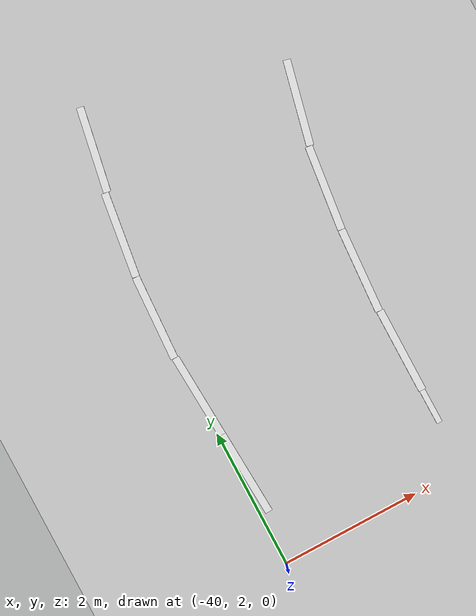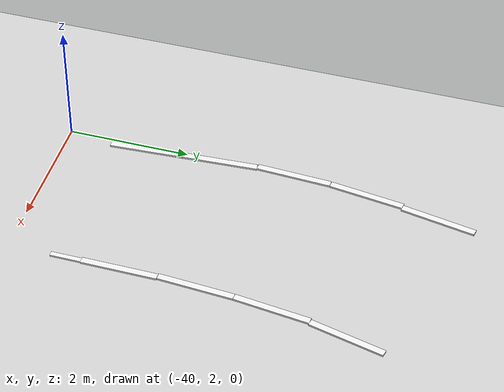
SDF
<sdf version="1.7">
 <world name="default">
  <model name="ground_plane">
   <static>1</static>
   <link name="link">
    <collision name="collision">
     <geometry><plane><normal>0 0 1</normal><size>100 100</size></plane></geometry>
     <surface><friction><ode><mu>100</mu><mu2>50</mu2></ode></friction></surface>
    </collision>
    <visual name="visual">
     <cast_shadows>0</cast_shadows>
     <geometry><plane><normal>0 0 1</normal><size>100 100</size></plane></geometry>
     <material>
      <script><uri>file://media/materials/scripts/gazebo.material</uri><name>Gazebo/Grey</name></script>
     </material>
    </visual>
   </link>
  </model>
  <model name="road_way_clone_clone_clone_0_clone_clone_clone_clone_0_clone_0_clone_0_clone_clone_clone_clone_clone_clone_clone_10_clone_2_clone_0_clone_1_clone_0_clone_0_clone_clone_0_clone_1_clone_clone_clone_clone_clone_0_clone_clone_clone_clone_clone_0">
   <link name="link">
    <inertial>
     <mass>1</mass>
     <inertia>
      <ixx>0.166667</ixx>
      <ixy>0</ixy>
      <ixz>0</ixz>
      <iyy>0.166667</iyy>
      <iyz>0</iyz>
      <izz>0.166667</izz>
     </inertia>
    </inertial>
    <visual name="visual">
     <geometry><box><size>0.106644 1.22348 0.03129</size></box></geometry>
     <material>
      <script><name>Gazebo/White</name><uri>file://media/materials/scripts/gazebo.material</uri></script>
      <shader type="pixel"><normal_map>__default__</normal_map></shader>
      <ambient>1 1 1 1</ambient>
      <diffuse>1 1 1 1</diffuse>
      <specular>0 0 0 1</specular>
      <emissive>0 0 0 1</emissive>
     </material>
    </visual>
    <collision name="collision">
     <geometry><box><size>0.10644 1.22348 0.03129</size></box></geometry>
     <surface>
      <friction>
       <ode><mu>1</mu><mu2>1</mu2><fdir1>0 0 0</fdir1><slip1>0</slip1><slip2>0</slip2></ode>
       <torsional>
        <coefficient>1</coefficient>
        <patch_radius>0</patch_radius>
        <surface_radius>0</surface_radius>
        <use_patch_radius>1</use_patch_radius>
        <ode><slip>0</slip></ode>
       </torsional>
      </friction>
      <bounce><restitution_coefficient>0</restitution_coefficient><threshold>1e+06</threshold></bounce>
      <contact>
       <collide_without_contact>0</collide_without_contact>
       <collide_without_contact_bitmask>1</collide_without_contact_bitmask>
       <collide_bitmask>1</collide_bitmask>
       <ode>
        <soft_cfm>0</soft_cfm>
        <soft_erp>0.2</soft_erp>
        <kp>1e+13</kp>
        <kd>1</kd>
        <max_vel>0.01</max_vel>
        <min_depth>0</min_depth>
       </ode>
       <bullet>
        <split_impulse>1</split_impulse>
        <split_impulse_penetration_threshold>-0.01</split_impulse_penetration_threshold>
        <soft_cfm>0</soft_cfm>
        <soft_erp>0.2</soft_erp>
        <kp>1e+13</kp>
        <kd>1</kd>
       </bullet>
      </contact>
     </surface>
    </collision>
   </link>
   <static>0</static>
   <pose>-39.6443 8.21608 0.015638 1.1e-05 -0 2.95875</pose>
  </model>
  <model name="road_way_clone_clone_clone_0_clone_clone_clone_clone_0_clone_0_clone_0_clone_clone_clone_clone_clone_clone_clone_10_clone_2_clone_0_clone_1_clone_0_clone_0_clone_clone_0_clone_1_clone_clone_clone_clone_clone_0_clone_clone_clone_clone_clone_0_clone">
   <link name="link">
    <inertial>
     <mass>1</mass>
     <inertia>
      <ixx>0.166667</ixx>
      <ixy>0</ixy>
      <ixz>0</ixz>
      <iyy>0.166667</iyy>
      <iyz>0</iyz>
      <izz>0.166667</izz>
     </inertia>
    </inertial>
    <visual name="visual">
     <geometry><box><size>0.106644 1.22348 0.03129</size></box></geometry>
     <material>
      <script><name>Gazebo/White</name><uri>file://media/materials/scripts/gazebo.material</uri></script>
      <shader type="pixel"><normal_map>__default__</normal_map></shader>
      <ambient>1 1 1 1</ambient>
      <diffuse>1 1 1 1</diffuse>
      <specular>0 0 0 1</specular>
      <emissive>0 0 0 1</emissive>
     </material>
    </visual>
    <collision name="collision">
     <geometry><box><size>0.10644 1.22348 0.03129</size></box></geometry>
     <surface>
      <friction>
       <ode><mu>1</mu><mu2>1</mu2><fdir1>0 0 0</fdir1><slip1>0</slip1><slip2>0</slip2></ode>
       <torsional>
        <coefficient>1</coefficient>
        <patch_radius>0</patch_radius>
        <surface_radius>0</surface_radius>
        <use_patch_radius>1</use_patch_radius>
        <ode><slip>0</slip></ode>
       </torsional>
      </friction>
      <bounce><restitution_coefficient>0</restitution_coefficient><threshold>1e+06</threshold></bounce>
      <contact>
       <collide_without_contact>0</collide_without_contact>
       <collide_without_contact_bitmask>1</collide_without_contact_bitmask>
       <collide_bitmask>1</collide_bitmask>
       <ode>
        <soft_cfm>0</soft_cfm>
        <soft_erp>0.2</soft_erp>
        <kp>1e+13</kp>
        <kd>1</kd>
        <max_vel>0.01</max_vel>
        <min_depth>0</min_depth>
       </ode>
       <bullet>
        <split_impulse>1</split_impulse>
        <split_impulse_penetration_threshold>-0.01</split_impulse_penetration_threshold>
        <soft_cfm>0</soft_cfm>
        <soft_erp>0.2</soft_erp>
        <kp>1e+13</kp>
        <kd>1</kd>
       </bullet>
      </contact>
     </surface>
    </collision>
   </link>
   <static>0</static>
   <pose>-36.8712 7.4549 0.01564 -8e-06 1e-06 2.91162</pose>
  </model>
  <model name="road_way_clone_clone_clone_0_clone_clone_clone_clone_0_clone_0_clone_0_clone_clone_clone_clone_clone_clone_clone_10_clone_2_clone_0_clone_1_clone_0_clone_0_clone_clone_0_clone_1_clone_clone_clone_clone_clone_0_clone_clone_clone_clone_clone_0_clone_0">
   <link name="link">
    <inertial>
     <mass>1</mass>
     <inertia>
      <ixx>0.166667</ixx>
      <ixy>0</ixy>
      <ixz>0</ixz>
      <iyy>0.166667</iyy>
      <iyz>0</iyz>
      <izz>0.166667</izz>
     </inertia>
    </inertial>
    <visual name="visual">
     <geometry><box><size>0.106644 1.22348 0.03129</size></box></geometry>
     <material>
      <script><name>Gazebo/White</name><uri>file://media/materials/scripts/gazebo.material</uri></script>
      <shader type="pixel"><normal_map>__default__</normal_map></shader>
      <ambient>1 1 1 1</ambient>
      <diffuse>1 1 1 1</diffuse>
      <specular>0 0 0 1</specular>
      <emissive>0 0 0 1</emissive>
     </material>
    </visual>
    <collision name="collision">
     <geometry><box><size>0.10644 1.22348 0.03129</size></box></geometry>
     <surface>
      <friction>
       <ode><mu>1</mu><mu2>1</mu2><fdir1>0 0 0</fdir1><slip1>0</slip1><slip2>0</slip2></ode>
       <torsional>
        <coefficient>1</coefficient>
        <patch_radius>0</patch_radius>
        <surface_radius>0</surface_radius>
        <use_patch_radius>1</use_patch_radius>
        <ode><slip>0</slip></ode>
       </torsional>
      </friction>
      <bounce><restitution_coefficient>0</restitution_coefficient><threshold>1e+06</threshold></bounce>
      <contact>
       <collide_without_contact>0</collide_without_contact>
       <collide_without_contact_bitmask>1</collide_without_contact_bitmask>
       <collide_bitmask>1</collide_bitmask>
       <ode>
        <soft_cfm>0</soft_cfm>
        <soft_erp>0.2</soft_erp>
        <kp>1e+13</kp>
        <kd>1</kd>
        <max_vel>0.01</max_vel>
        <min_depth>0</min_depth>
       </ode>
       <bullet>
        <split_impulse>1</split_impulse>
        <split_impulse_penetration_threshold>-0.01</split_impulse_penetration_threshold>
        <soft_cfm>0</soft_cfm>
        <soft_erp>0.2</soft_erp>
        <kp>1e+13</kp>
        <kd>1</kd>
       </bullet>
      </contact>
     </surface>
    </collision>
   </link>
   <static>0</static>
   <pose>-39.874 7.0117 0.015638 1.1e-05 -0 3.00415</pose>
  </model>
  <model name="road_way_clone_clone_clone_0_clone_clone_clone_clone_0_clone_0_clone_0_clone_clone_clone_clone_clone_clone_clone_10_clone_2_clone_0_clone_1_clone_0_clone_0_clone_clone_0_clone_1_clone_clone_clone_clone_clone_0_clone_clone_clone_clone_clone_0_clone_clone">
   <link name="link">
    <inertial>
     <mass>1</mass>
     <inertia>
      <ixx>0.166667</ixx>
      <ixy>0</ixy>
      <ixz>0</ixz>
      <iyy>0.166667</iyy>
      <iyz>0</iyz>
      <izz>0.166667</izz>
     </inertia>
    </inertial>
    <visual name="visual">
     <geometry><box><size>0.106644 1.22348 0.03129</size></box></geometry>
     <material>
      <script><name>Gazebo/White</name><uri>file://media/materials/scripts/gazebo.material</uri></script>
      <shader type="pixel"><normal_map>__default__</normal_map></shader>
      <ambient>1 1 1 1</ambient>
      <diffuse>1 1 1 1</diffuse>
      <specular>0 0 0 1</specular>
      <emissive>0 0 0 1</emissive>
     </material>
    </visual>
    <collision name="collision">
     <geometry><box><size>0.10644 1.22348 0.03129</size></box></geometry>
     <surface>
      <friction>
       <ode><mu>1</mu><mu2>1</mu2><fdir1>0 0 0</fdir1><slip1>0</slip1><slip2>0</slip2></ode>
       <torsional>
        <coefficient>1</coefficient>
        <patch_radius>0</patch_radius>
        <surface_radius>0</surface_radius>
        <use_patch_radius>1</use_patch_radius>
        <ode><slip>0</slip></ode>
       </torsional>
      </friction>
      <bounce><restitution_coefficient>0</restitution_coefficient><threshold>1e+06</threshold></bounce>
      <contact>
       <collide_without_contact>0</collide_without_contact>
       <collide_without_contact_bitmask>1</collide_without_contact_bitmask>
       <collide_bitmask>1</collide_bitmask>
       <ode>
        <soft_cfm>0</soft_cfm>
        <soft_erp>0.2</soft_erp>
        <kp>1e+13</kp>
        <kd>1</kd>
        <max_vel>0.01</max_vel>
        <min_depth>0</min_depth>
       </ode>
       <bullet>
        <split_impulse>1</split_impulse>
        <split_impulse_penetration_threshold>-0.01</split_impulse_penetration_threshold>
        <soft_cfm>0</soft_cfm>
        <soft_erp>0.2</soft_erp>
        <kp>1e+13</kp>
        <kd>1</kd>
       </bullet>
      </contact>
     </surface>
    </collision>
   </link>
   <static>0</static>
   <pose>-37.1064 6.2512 0.015634 1.8e-05 0 3.02043</pose>
  </model>
  <model name="road_way_clone_clone_clone_0_clone_clone_clone_clone_0_clone_0_clone_0_clone_clone_clone_clone_clone_clone_clone_10_clone_2_clone_0_clone_1_clone_0_clone_0_clone_clone_0_clone_1_clone_clone_clone_clone_clone_0_clone_clone_clone_clone_clone_0_clone_0_clone">
   <link name="link">
    <inertial>
     <mass>1</mass>
     <inertia>
      <ixx>0.166667</ixx>
      <ixy>0</ixy>
      <ixz>0</ixz>
      <iyy>0.166667</iyy>
      <iyz>0</iyz>
      <izz>0.166667</izz>
     </inertia>
    </inertial>
    <visual name="visual">
     <geometry><box><size>0.106644 1.22348 0.03129</size></box></geometry>
     <material>
      <script><name>Gazebo/White</name><uri>file://media/materials/scripts/gazebo.material</uri></script>
      <shader type="pixel"><normal_map>__default__</normal_map></shader>
      <ambient>1 1 1 1</ambient>
      <diffuse>1 1 1 1</diffuse>
      <specular>0 0 0 1</specular>
      <emissive>0 0 0 1</emissive>
     </material>
    </visual>
    <collision name="collision">
     <geometry><box><size>0.10644 1.22348 0.03129</size></box></geometry>
     <surface>
      <friction>
       <ode><mu>1</mu><mu2>1</mu2><fdir1>0 0 0</fdir1><slip1>0</slip1><slip2>0</slip2></ode>
       <torsional>
        <coefficient>1</coefficient>
        <patch_radius>0</patch_radius>
        <surface_radius>0</surface_radius>
        <use_patch_radius>1</use_patch_radius>
        <ode><slip>0</slip></ode>
       </torsional>
      </friction>
      <bounce><restitution_coefficient>0</restitution_coefficient><threshold>1e+06</threshold></bounce>
      <contact>
       <collide_without_contact>0</collide_without_contact>
       <collide_without_contact_bitmask>1</collide_without_contact_bitmask>
       <collide_bitmask>1</collide_bitmask>
       <ode>
        <soft_cfm>0</soft_cfm>
        <soft_erp>0.2</soft_erp>
        <kp>1e+13</kp>
        <kd>1</kd>
        <max_vel>0.01</max_vel>
        <min_depth>0</min_depth>
       </ode>
       <bullet>
        <split_impulse>1</split_impulse>
        <split_impulse_penetration_threshold>-0.01</split_impulse_penetration_threshold>
        <soft_cfm>0</soft_cfm>
        <soft_erp>0.2</soft_erp>
        <kp>1e+13</kp>
        <kd>1</kd>
       </bullet>
      </contact>
     </surface>
    </collision>
   </link>
   <static>0</static>
   <pose>-39.9926 5.79061 0.015638 1.1e-05 -0 3.09175</pose>
  </model>
  <model name="road_way_clone_clone_clone_0_clone_clone_clone_clone_0_clone_0_clone_0_clone_clone_clone_clone_clone_clone_clone_10_clone_2_clone_0_clone_1_clone_0_clone_0_clone_clone_0_clone_1_clone_clone_clone_clone_clone_0_clone_clone_clone_clone_clone_0_clone_0_clone_clone">
   <link name="link">
    <inertial>
     <mass>1</mass>
     <inertia>
      <ixx>0.166667</ixx>
      <ixy>0</ixy>
      <ixz>0</ixz>
      <iyy>0.166667</iyy>
      <iyz>0</iyz>
      <izz>0.166667</izz>
     </inertia>
    </inertial>
    <visual name="visual">
     <geometry><box><size>0.106644 1.22348 0.03129</size></box></geometry>
     <material>
      <script><name>Gazebo/White</name><uri>file://media/materials/scripts/gazebo.material</uri></script>
      <shader type="pixel"><normal_map>__default__</normal_map></shader>
      <ambient>1 1 1 1</ambient>
      <diffuse>1 1 1 1</diffuse>
      <specular>0 0 0 1</specular>
      <emissive>0 0 0 1</emissive>
     </material>
    </visual>
    <collision name="collision">
     <geometry><box><size>0.10644 1.22348 0.03129</size></box></geometry>
     <surface>
      <friction>
       <ode><mu>1</mu><mu2>1</mu2><fdir1>0 0 0</fdir1><slip1>0</slip1><slip2>0</slip2></ode>
       <torsional>
        <coefficient>1</coefficient>
        <patch_radius>0</patch_radius>
        <surface_radius>0</surface_radius>
        <use_patch_radius>1</use_patch_radius>
        <ode><slip>0</slip></ode>
       </torsional>
      </friction>
      <bounce><restitution_coefficient>0</restitution_coefficient><threshold>1e+06</threshold></bounce>
      <contact>
       <collide_without_contact>0</collide_without_contact>
       <collide_without_contact_bitmask>1</collide_without_contact_bitmask>
       <collide_bitmask>1</collide_bitmask>
       <ode>
        <soft_cfm>0</soft_cfm>
        <soft_erp>0.2</soft_erp>
        <kp>1e+13</kp>
        <kd>1</kd>
        <max_vel>0.01</max_vel>
        <min_depth>0</min_depth>
       </ode>
       <bullet>
        <split_impulse>1</split_impulse>
        <split_impulse_penetration_threshold>-0.01</split_impulse_penetration_threshold>
        <soft_cfm>0</soft_cfm>
        <soft_erp>0.2</soft_erp>
        <kp>1e+13</kp>
        <kd>1</kd>
       </bullet>
      </contact>
     </surface>
    </collision>
   </link>
   <static>0</static>
   <pose>-37.2199 5.03052 0.015534 5e-06 -1e-06 3.07595</pose>
  </model>
  <model name="road_way_clone_clone_clone_0_clone_clone_clone_clone_0_clone_0_clone_0_clone_clone_clone_clone_clone_clone_clone_10_clone_2_clone_0_clone_1_clone_0_clone_0_clone_clone_0_clone_1_clone_clone_clone_clone_clone_0_clone_clone_clone_clone_clone_0_clone_0_clone_clone_0">
   <link name="link">
    <inertial>
     <mass>1</mass>
     <inertia>
      <ixx>0.166667</ixx>
      <ixy>0</ixy>
      <ixz>0</ixz>
      <iyy>0.166667</iyy>
      <iyz>0</iyz>
      <izz>0.166667</izz>
     </inertia>
    </inertial>
    <visual name="visual">
     <geometry><box><size>0.106644 1.22348 0.03129</size></box></geometry>
     <material>
      <script><name>Gazebo/White</name><uri>file://media/materials/scripts/gazebo.material</uri></script>
      <shader type="pixel"><normal_map>__default__</normal_map></shader>
      <ambient>1 1 1 1</ambient>
      <diffuse>1 1 1 1</diffuse>
      <specular>0 0 0 1</specular>
      <emissive>0 0 0 1</emissive>
     </material>
    </visual>
    <collision name="collision">
     <geometry><box><size>0.10644 1.22348 0.03129</size></box></geometry>
     <surface>
      <friction>
       <ode><mu>1</mu><mu2>1</mu2><fdir1>0 0 0</fdir1><slip1>0</slip1><slip2>0</slip2></ode>
       <torsional>
        <coefficient>1</coefficient>
        <patch_radius>0</patch_radius>
        <surface_radius>0</surface_radius>
        <use_patch_radius>1</use_patch_radius>
        <ode><slip>0</slip></ode>
       </torsional>
      </friction>
      <bounce><restitution_coefficient>0</restitution_coefficient><threshold>1e+06</threshold></bounce>
      <contact>
       <collide_without_contact>0</collide_without_contact>
       <collide_without_contact_bitmask>1</collide_without_contact_bitmask>
       <collide_bitmask>1</collide_bitmask>
       <ode>
        <soft_cfm>0</soft_cfm>
        <soft_erp>0.2</soft_erp>
        <kp>1e+13</kp>
        <kd>1</kd>
        <max_vel>0.01</max_vel>
        <min_depth>0</min_depth>
       </ode>
       <bullet>
        <split_impulse>1</split_impulse>
        <split_impulse_penetration_threshold>-0.01</split_impulse_penetration_threshold>
        <soft_cfm>0</soft_cfm>
        <soft_erp>0.2</soft_erp>
        <kp>1e+13</kp>
        <kd>1</kd>
       </bullet>
      </contact>
     </surface>
    </collision>
   </link>
   <static>0</static>
   <pose>-39.9759 4.56406 0.015638 -1.1e-05 -0 -3.08921</pose>
  </model>
  <model name="road_way_clone_clone_clone_0_clone_clone_clone_clone_0_clone_0_clone_0_clone_clone_clone_clone_clone_clone_clone_10_clone_2_clone_0_clone_1_clone_0_clone_0_clone_clone_0_clone_1_clone_clone_clone_clone_clone_0_clone_clone_clone_clone_clone_0_clone_0_clone_clone_0_clone">
   <link name="link">
    <inertial>
     <mass>1</mass>
     <inertia>
      <ixx>0.166667</ixx>
      <ixy>0</ixy>
      <ixz>0</ixz>
      <iyy>0.166667</iyy>
      <iyz>0</iyz>
      <izz>0.166667</izz>
     </inertia>
    </inertial>
    <visual name="visual">
     <geometry><box><size>0.106644 1.22348 0.03129</size></box></geometry>
     <material>
      <script><name>Gazebo/White</name><uri>file://media/materials/scripts/gazebo.material</uri></script>
      <shader type="pixel"><normal_map>__default__</normal_map></shader>
      <ambient>1 1 1 1</ambient>
      <diffuse>1 1 1 1</diffuse>
      <specular>0 0 0 1</specular>
      <emissive>0 0 0 1</emissive>
     </material>
    </visual>
    <collision name="collision">
     <geometry><box><size>0.10644 1.22348 0.03129</size></box></geometry>
     <surface>
      <friction>
       <ode><mu>1</mu><mu2>1</mu2><fdir1>0 0 0</fdir1><slip1>0</slip1><slip2>0</slip2></ode>
       <torsional>
        <coefficient>1</coefficient>
        <patch_radius>0</patch_radius>
        <surface_radius>0</surface_radius>
        <use_patch_radius>1</use_patch_radius>
        <ode><slip>0</slip></ode>
       </torsional>
      </friction>
      <bounce><restitution_coefficient>0</restitution_coefficient><threshold>1e+06</threshold></bounce>
      <contact>
       <collide_without_contact>0</collide_without_contact>
       <collide_without_contact_bitmask>1</collide_without_contact_bitmask>
       <collide_bitmask>1</collide_bitmask>
       <ode>
        <soft_cfm>0</soft_cfm>
        <soft_erp>0.2</soft_erp>
        <kp>1e+13</kp>
        <kd>1</kd>
        <max_vel>0.01</max_vel>
        <min_depth>0</min_depth>
       </ode>
       <bullet>
        <split_impulse>1</split_impulse>
        <split_impulse_penetration_threshold>-0.01</split_impulse_penetration_threshold>
        <soft_cfm>0</soft_cfm>
        <soft_erp>0.2</soft_erp>
        <kp>1e+13</kp>
        <kd>1</kd>
       </bullet>
      </contact>
     </surface>
    </collision>
   </link>
   <static>0</static>
   <pose>-37.25 3.80508 0.015638 1.1e-05 -0 3.13644</pose>
  </model>
  <model name="road_way_clone_clone_clone_0_clone_clone_clone_clone_0_clone_0_clone_0_clone_clone_clone_clone_clone_clone_clone_10_clone_2_clone_0_clone_1_clone_0_clone_0_clone_clone_0_clone_1_clone_clone_clone_clone_clone_0_clone_clone_clone_clone_clone_0_clone_0_clone_clone_0_clone_0">
   <link name="link">
    <inertial>
     <mass>1</mass>
     <inertia>
      <ixx>0.166667</ixx>
      <ixy>0</ixy>
      <ixz>0</ixz>
      <iyy>0.166667</iyy>
      <iyz>0</iyz>
      <izz>0.166667</izz>
     </inertia>
    </inertial>
    <visual name="visual">
     <geometry><box><size>0.106644 1.22348 0.03129</size></box></geometry>
     <material>
      <script><name>Gazebo/White</name><uri>file://media/materials/scripts/gazebo.material</uri></script>
      <shader type="pixel"><normal_map>__default__</normal_map></shader>
      <ambient>1 1 1 1</ambient>
      <diffuse>1 1 1 1</diffuse>
      <specular>0 0 0 1</specular>
      <emissive>0 0 0 1</emissive>
     </material>
    </visual>
    <collision name="collision">
     <geometry><box><size>0.10644 1.22348 0.03129</size></box></geometry>
     <surface>
      <friction>
       <ode><mu>1</mu><mu2>1</mu2><fdir1>0 0 0</fdir1><slip1>0</slip1><slip2>0</slip2></ode>
       <torsional>
        <coefficient>1</coefficient>
        <patch_radius>0</patch_radius>
        <surface_radius>0</surface_radius>
        <use_patch_radius>1</use_patch_radius>
        <ode><slip>0</slip></ode>
       </torsional>
      </friction>
      <bounce><restitution_coefficient>0</restitution_coefficient><threshold>1e+06</threshold></bounce>
      <contact>
       <collide_without_contact>0</collide_without_contact>
       <collide_without_contact_bitmask>1</collide_without_contact_bitmask>
       <collide_bitmask>1</collide_bitmask>
       <ode>
        <soft_cfm>0</soft_cfm>
        <soft_erp>0.2</soft_erp>
        <kp>1e+13</kp>
        <kd>1</kd>
        <max_vel>0.01</max_vel>
        <min_depth>0</min_depth>
       </ode>
       <bullet>
        <split_impulse>1</split_impulse>
        <split_impulse_penetration_threshold>-0.01</split_impulse_penetration_threshold>
        <soft_cfm>0</soft_cfm>
        <soft_erp>0.2</soft_erp>
        <kp>1e+13</kp>
        <kd>1</kd>
       </bullet>
      </contact>
     </surface>
    </collision>
   </link>
   <static>0</static>
   <pose>-39.91 3.34234 0.015638 -1.1e-05 -0 -3.08932</pose>
  </model>
  <model name="road_way2">
   <link name="link">
    <inertial>
     <mass>1</mass>
     <inertia>
      <ixx>0.166667</ixx>
      <ixy>0</ixy>
      <ixz>0</ixz>
      <iyy>0.166667</iyy>
      <iyz>0</iyz>
      <izz>0.166667</izz>
     </inertia>
    </inertial>
    <visual name="visual">
     <geometry><box><size>0.08 0.5 0.03129</size></box></geometry>
     <material>
      <script><name>Gazebo/White</name><uri>file://media/materials/scripts/gazebo.material</uri></script>
      <shader type="pixel"><normal_map>__default__</normal_map></shader>
      <ambient>1 1 1 1</ambient>
      <diffuse>1 1 1 1</diffuse>
      <specular>0 0 0 1</specular>
      <emissive>0 0 0 1</emissive>
     </material>
    </visual>
    <collision name="collision">
     <geometry><box><size>0.01644 0.01348 0.0129</size></box></geometry>
     <surface>
      <friction>
       <ode><mu>1</mu><mu2>1</mu2><fdir1>0 0 0</fdir1><slip1>0</slip1><slip2>0</slip2></ode>
       <torsional>
        <coefficient>1</coefficient>
        <patch_radius>0</patch_radius>
        <surface_radius>0</surface_radius>
        <use_patch_radius>1</use_patch_radius>
        <ode><slip>0</slip></ode>
       </torsional>
      </friction>
      <bounce><restitution_coefficient>0</restitution_coefficient><threshold>1e+06</threshold></bounce>
      <contact>
       <collide_without_contact>0</collide_without_contact>
       <collide_without_contact_bitmask>1</collide_without_contact_bitmask>
       <collide_bitmask>1</collide_bitmask>
       <ode>
        <soft_cfm>0</soft_cfm>
        <soft_erp>0.2</soft_erp>
        <kp>1e+13</kp>
        <kd>1</kd>
        <max_vel>0.01</max_vel>
        <min_depth>0</min_depth>
       </ode>
       <bullet>
        <split_impulse>1</split_impulse>
        <split_impulse_penetration_threshold>-0.01</split_impulse_penetration_threshold>
        <soft_cfm>0</soft_cfm>
        <soft_erp>0.2</soft_erp>
        <kp>1e+13</kp>
        <kd>1</kd>
       </bullet>
      </contact>
     </surface>
    </collision>
   </link>
   <static>0</static>
   <pose>-37.2562 2.94309 0.00645 -5e-06 2e-06 -1e-06</pose>
  </model>
 </world>
</sdf>
